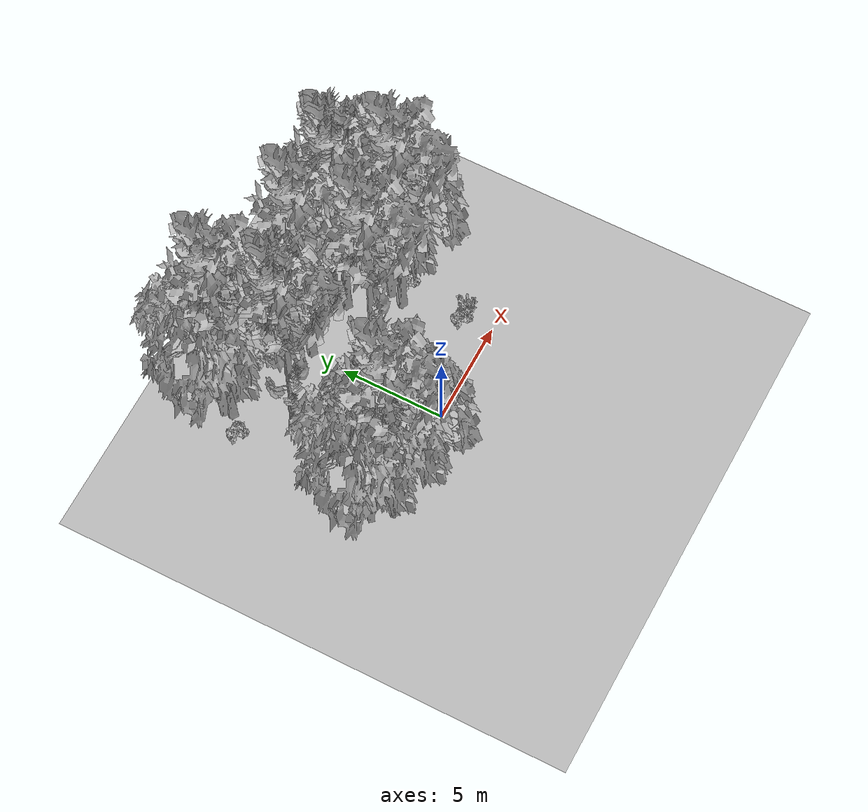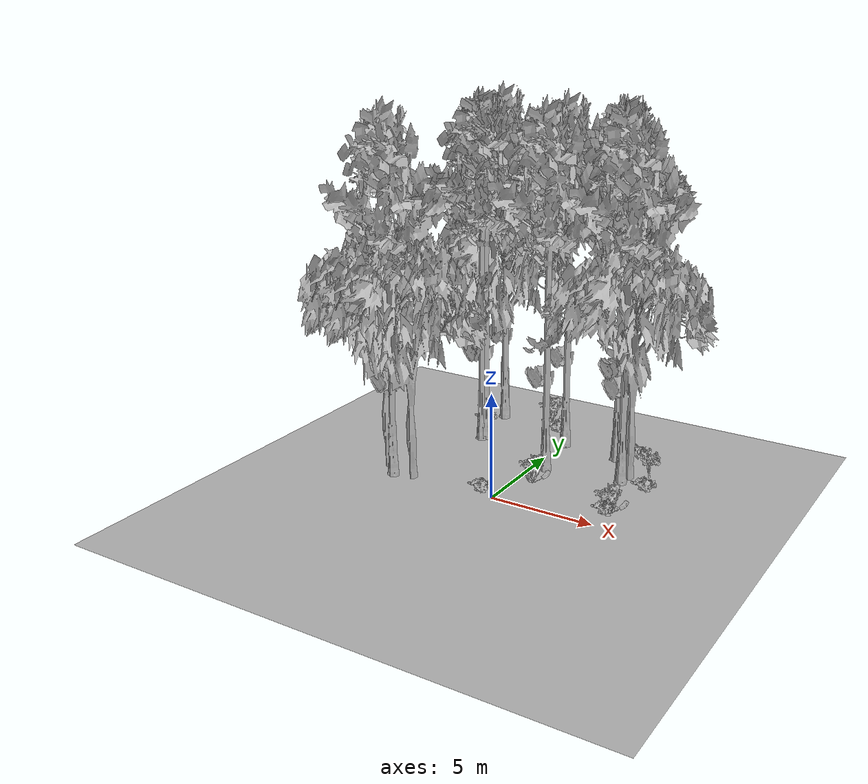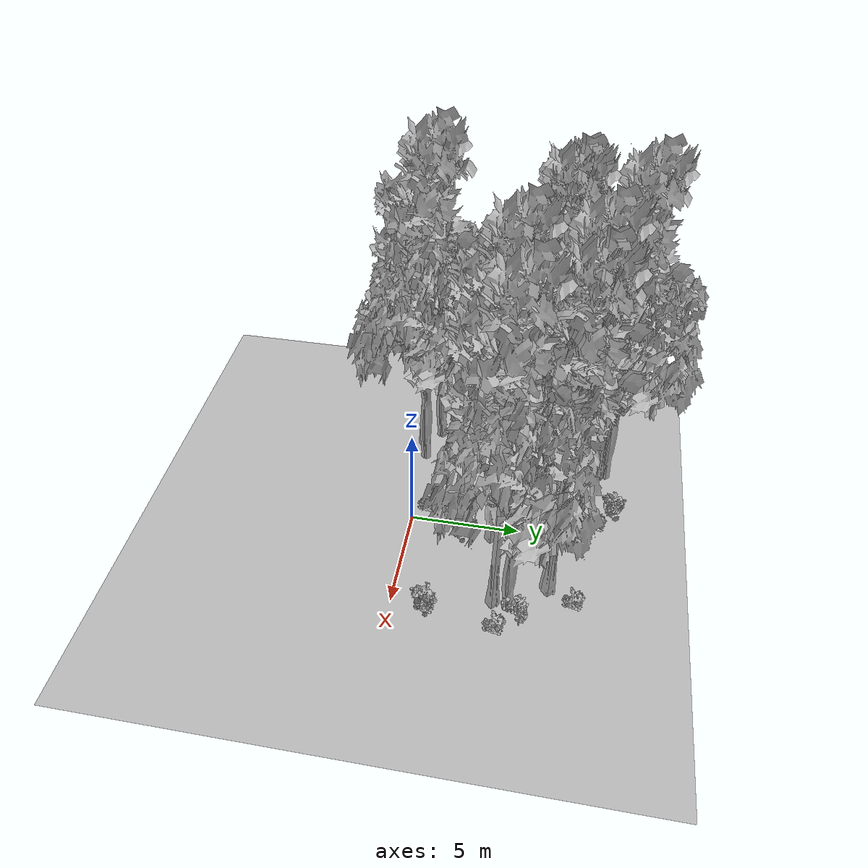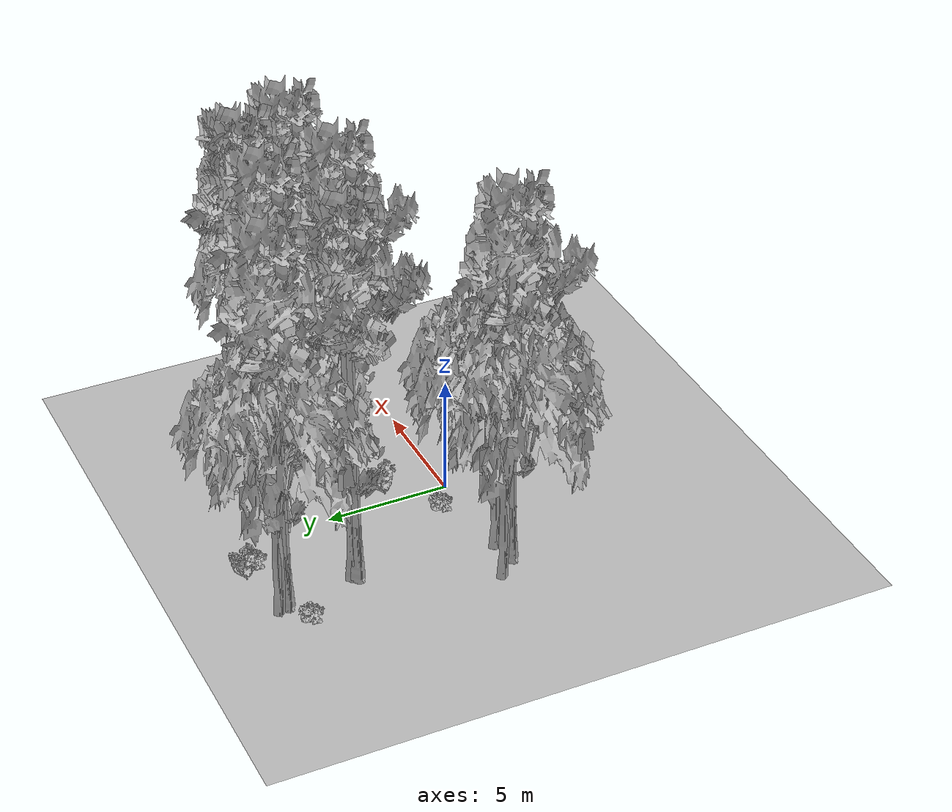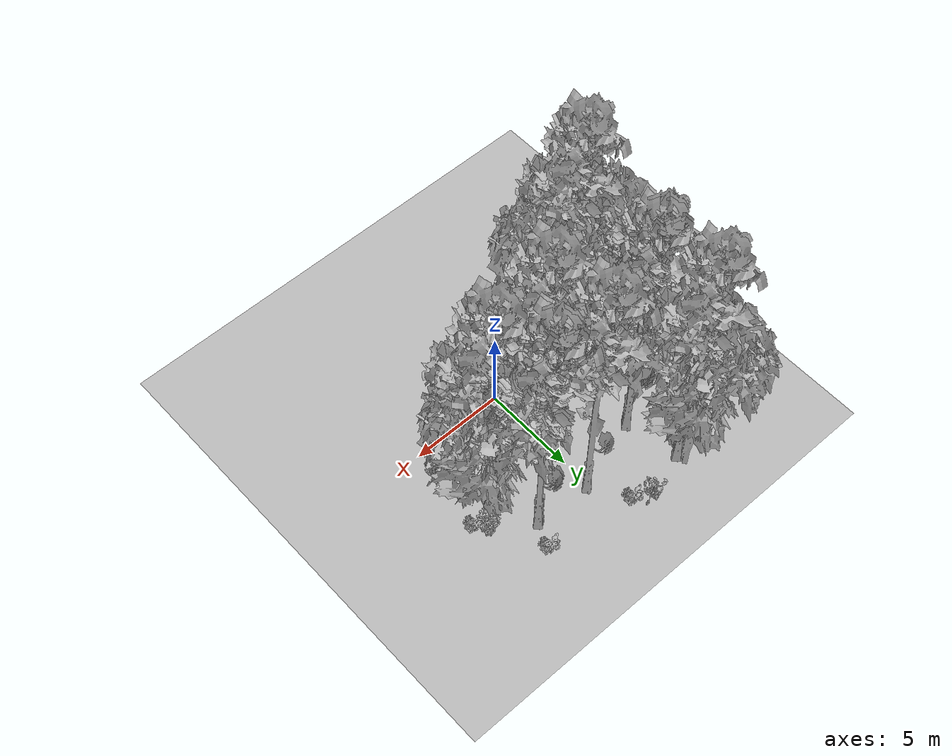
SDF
<sdf version="1.7">
 <world name="default">
  <model name="ground_plane">
   <static>1</static>
   <link name="link">
    <collision name="collision">
     <pose>-50 0 0 0 -0 0</pose>
     <geometry><plane><normal>0 0 1</normal><size>80 80</size></plane></geometry>
     <surface><contact><ode><min_depth>0.01</min_depth><max_vel>0</max_vel></ode></contact></surface>
    </collision>
    <visual name="grass">
     <cast_shadows>0</cast_shadows>
     <geometry>
      <mesh>
       <scale>0.46714285714285714 0.46714285714285714 0.1</scale>
       <uri>file://grass_plane/meshes/grass_plane.dae</uri>
      </mesh>
     </geometry>
    </visual>
   </link>
  </model>
  <model name="Tree 28">
   <static>1</static>
   <pose>-4.318430323322623 -0.1161629892853 0 1.57079 -0 0</pose>
   <link name="link">
    <collision name="collision">
     <geometry><mesh><scale>3.5 5 3.5</scale><uri>model://tree_2/meshes/tree_2.obj</uri></mesh></geometry>
    </collision>
    <visual name="visual">
     <geometry><mesh><scale>3.5 5 3.5</scale><uri>model://tree_2/meshes/tree_2.obj</uri></mesh></geometry>
    </visual>
   </link>
  </model>
  <model name="Tree 49">
   <static>1</static>
   <pose>-5.182883097933043 -0.32822462516662654 0 1.57079 -0 0</pose>
   <link name="link">
    <collision name="collision">
     <geometry><mesh><scale>3.5 5 3.5</scale><uri>model://tree_9/meshes/tree_9.obj</uri></mesh></geometry>
    </collision>
    <visual name="visual">
     <geometry><mesh><scale>3.5 5 3.5</scale><uri>model://tree_9/meshes/tree_9.obj</uri></mesh></geometry>
    </visual>
   </link>
  </model>
  <model name="Tree 66">
   <static>1</static>
   <pose>0.6810313529697041 3.8299848045472515 0 1.57079 -0 0</pose>
   <link name="link">
    <collision name="collision">
     <geometry><mesh><scale>3.5 5 3.5</scale><uri>model://tree_9/meshes/tree_9.obj</uri></mesh></geometry>
    </collision>
    <visual name="visual">
     <geometry><mesh><scale>3.5 5 3.5</scale><uri>model://tree_9/meshes/tree_9.obj</uri></mesh></geometry>
    </visual>
   </link>
  </model>
  <model name="Tree 110">
   <static>1</static>
   <pose>-4.2507201539104855 8.441320905821321 0 1.57079 -0 0</pose>
   <link name="link">
    <collision name="collision">
     <geometry><mesh><scale>3.5 5 3.5</scale><uri>model://tree_9/meshes/tree_9.obj</uri></mesh></geometry>
    </collision>
    <visual name="visual">
     <geometry><mesh><scale>3.5 5 3.5</scale><uri>model://tree_9/meshes/tree_9.obj</uri></mesh></geometry>
    </visual>
   </link>
  </model>
  <model name="Tree 122">
   <static>1</static>
   <pose>-4.510435952229443 8.80580828395069 0 1.57079 -0 0</pose>
   <link name="link">
    <collision name="collision">
     <geometry><mesh><scale>3.5 5 3.5</scale><uri>model://tree_2/meshes/tree_2.obj</uri></mesh></geometry>
    </collision>
    <visual name="visual">
     <geometry><mesh><scale>3.5 5 3.5</scale><uri>model://tree_2/meshes/tree_2.obj</uri></mesh></geometry>
    </visual>
   </link>
  </model>
  <model name="Tree 230">
   <static>1</static>
   <pose>0.20750306685467734 6.79404312009752 0 1.57079 -0 0</pose>
   <link name="link">
    <collision name="collision">
     <geometry><mesh><scale>3.5 5 3.5</scale><uri>model://tree_9/meshes/tree_9.obj</uri></mesh></geometry>
    </collision>
    <visual name="visual">
     <geometry><mesh><scale>3.5 5 3.5</scale><uri>model://tree_9/meshes/tree_9.obj</uri></mesh></geometry>
    </visual>
   </link>
  </model>
  <model name="Tree 299">
   <static>1</static>
   <pose>-3.676956762026414 5.559333901532909 0 1.57079 -0 0</pose>
   <link name="link">
    <collision name="collision">
     <geometry><mesh><scale>3.5 5 3.5</scale><uri>model://tree_9/meshes/tree_9.obj</uri></mesh></geometry>
    </collision>
    <visual name="visual">
     <geometry><mesh><scale>3.5 5 3.5</scale><uri>model://tree_9/meshes/tree_9.obj</uri></mesh></geometry>
    </visual>
   </link>
  </model>
  <model name="Tree 332">
   <static>1</static>
   <pose>4.420492277549656 4.967079046440915 0 1.57079 -0 0</pose>
   <link name="link">
    <collision name="collision">
     <geometry><mesh><scale>3.5 5 3.5</scale><uri>model://tree_2/meshes/tree_2.obj</uri></mesh></geometry>
    </collision>
    <visual name="visual">
     <geometry><mesh><scale>3.5 5 3.5</scale><uri>model://tree_2/meshes/tree_2.obj</uri></mesh></geometry>
    </visual>
   </link>
  </model>
  <model name="Tree 343">
   <static>1</static>
   <pose>-6.086001793075162 0.40546289231185995 0 1.57079 -0 0</pose>
   <link name="link">
    <collision name="collision">
     <geometry><mesh><scale>3.5 5 3.5</scale><uri>model://tree_2/meshes/tree_2.obj</uri></mesh></geometry>
    </collision>
    <visual name="visual">
     <geometry><mesh><scale>3.5 5 3.5</scale><uri>model://tree_2/meshes/tree_2.obj</uri></mesh></geometry>
    </visual>
   </link>
  </model>
  <model name="Tree 359">
   <static>1</static>
   <pose>4.363991219638059 4.336899244300469 0 1.57079 -0 0</pose>
   <link name="link">
    <collision name="collision">
     <geometry><mesh><scale>3.5 5 3.5</scale><uri>model://tree_9/meshes/tree_9.obj</uri></mesh></geometry>
    </collision>
    <visual name="visual">
     <geometry><mesh><scale>3.5 5 3.5</scale><uri>model://tree_9/meshes/tree_9.obj</uri></mesh></geometry>
    </visual>
   </link>
  </model>
  <model name="Tree 369">
   <static>1</static>
   <pose>3.1046724316712826 6.549945817037532 0 1.57079 -0 0</pose>
   <link name="link">
    <collision name="collision">
     <geometry><mesh><scale>3.5 5 3.5</scale><uri>model://tree_9/meshes/tree_9.obj</uri></mesh></geometry>
    </collision>
    <visual name="visual">
     <geometry><mesh><scale>3.5 5 3.5</scale><uri>model://tree_9/meshes/tree_9.obj</uri></mesh></geometry>
    </visual>
   </link>
  </model>
  <model name="Tree 402">
   <static>1</static>
   <pose>3.2664971606028033 6.647022338016733 0 1.57079 -0 0</pose>
   <link name="link">
    <collision name="collision">
     <geometry><mesh><scale>3.5 5 3.5</scale><uri>model://tree_9/meshes/tree_9.obj</uri></mesh></geometry>
    </collision>
    <visual name="visual">
     <geometry><mesh><scale>3.5 5 3.5</scale><uri>model://tree_9/meshes/tree_9.obj</uri></mesh></geometry>
    </visual>
   </link>
  </model>
  <model name="Tree 409">
   <static>1</static>
   <pose>-3.8247989211040263 5.416104082467086 0 1.57079 -0 0</pose>
   <link name="link">
    <collision name="collision">
     <geometry><mesh><scale>3.5 5 3.5</scale><uri>model://tree_9/meshes/tree_9.obj</uri></mesh></geometry>
    </collision>
    <visual name="visual">
     <geometry><mesh><scale>3.5 5 3.5</scale><uri>model://tree_9/meshes/tree_9.obj</uri></mesh></geometry>
    </visual>
   </link>
  </model>
  <model name="Bush 2">
   <static>1</static>
   <pose>5.4516089853116725 4.552186415486929 0 1.57079 -0 0</pose>
   <link name="link">
    <collision name="collision">
     <geometry><mesh><scale>2 2 2</scale><uri>model://bush_2/meshes/bush_2.obj</uri></mesh></geometry>
     <surface><contact><collide_without_contact>false</collide_without_contact></contact></surface>
    </collision>
    <visual name="visual">
     <geometry><mesh><scale>2 2 2</scale><uri>model://bush_2/meshes/bush_2.obj</uri></mesh></geometry>
    </visual>
   </link>
  </model>
  <model name="Bush 19">
   <static>1</static>
   <pose>-5.022900858947118 7.7843610752612165 0 1.57079 -0 0</pose>
   <link name="link">
    <collision name="collision">
     <geometry><mesh><scale>2 2 2</scale><uri>model://bush_2/meshes/bush_2.obj</uri></mesh></geometry>
     <surface><contact><collide_without_contact>false</collide_without_contact></contact></surface>
    </collision>
    <visual name="visual">
     <geometry><mesh><scale>2 2 2</scale><uri>model://bush_2/meshes/bush_2.obj</uri></mesh></geometry>
    </visual>
   </link>
  </model>
  <model name="Bush 135">
   <static>1</static>
   <pose>-0.944319001160693 0.619796168320697 0 1.57079 -0 0</pose>
   <link name="link">
    <collision name="collision">
     <geometry><mesh><scale>2 2 2</scale><uri>model://bush_2/meshes/bush_2.obj</uri></mesh></geometry>
     <surface><contact><collide_without_contact>false</collide_without_contact></contact></surface>
    </collision>
    <visual name="visual">
     <geometry><mesh><scale>2 2 2</scale><uri>model://bush_2/meshes/bush_2.obj</uri></mesh></geometry>
    </visual>
   </link>
  </model>
  <model name="Bush 165">
   <static>1</static>
   <pose>3.577124376536389 7.774666348452691 0 1.57079 -0 0</pose>
   <link name="link">
    <collision name="collision">
     <geometry><mesh><scale>2 2 2</scale><uri>model://bush_2/meshes/bush_2.obj</uri></mesh></geometry>
     <surface><contact><collide_without_contact>false</collide_without_contact></contact></surface>
    </collision>
    <visual name="visual">
     <geometry><mesh><scale>2 2 2</scale><uri>model://bush_2/meshes/bush_2.obj</uri></mesh></geometry>
    </visual>
   </link>
  </model>
  <model name="Bush 182">
   <static>1</static>
   <pose>-1.1877091519175664 8.542320714025493 0 1.57079 -0 0</pose>
   <link name="link">
    <collision name="collision">
     <geometry><mesh><scale>2 2 2</scale><uri>model://bush_2/meshes/bush_2.obj</uri></mesh></geometry>
     <surface><contact><collide_without_contact>false</collide_without_contact></contact></surface>
    </collision>
    <visual name="visual">
     <geometry><mesh><scale>2 2 2</scale><uri>model://bush_2/meshes/bush_2.obj</uri></mesh></geometry>
    </visual>
   </link>
  </model>
  <model name="Bush 265">
   <static>1</static>
   <pose>-1.8785088274832802 9.16064724408593 0 1.57079 -0 0</pose>
   <link name="link">
    <collision name="collision">
     <geometry><mesh><scale>2 2 2</scale><uri>model://bush_4/meshes/bush_4.obj</uri></mesh></geometry>
     <surface><contact><collide_without_contact>false</collide_without_contact></contact></surface>
    </collision>
    <visual name="visual">
     <geometry><mesh><scale>2 2 2</scale><uri>model://bush_4/meshes/bush_4.obj</uri></mesh></geometry>
    </visual>
   </link>
  </model>
  <model name="Bush 590">
   <static>1</static>
   <pose>5.281275394659765 5.558927173381683 0 1.57079 -0 0</pose>
   <link name="link">
    <collision name="collision">
     <geometry><mesh><scale>2 2 2</scale><uri>model://bush_5/meshes/bush_5.obj</uri></mesh></geometry>
     <surface><contact><collide_without_contact>false</collide_without_contact></contact></surface>
    </collision>
    <visual name="visual">
     <geometry><mesh><scale>2 2 2</scale><uri>model://bush_5/meshes/bush_5.obj</uri></mesh></geometry>
    </visual>
   </link>
  </model>
  <model name="Bush 610">
   <static>1</static>
   <pose>0.7792608726649064 2.3253819915676317 0 1.57079 -0 0</pose>
   <link name="link">
    <collision name="collision">
     <geometry><mesh><scale>2 2 2</scale><uri>model://bush_4/meshes/bush_4.obj</uri></mesh></geometry>
     <surface><contact><collide_without_contact>false</collide_without_contact></contact></surface>
    </collision>
    <visual name="visual">
     <geometry><mesh><scale>2 2 2</scale><uri>model://bush_4/meshes/bush_4.obj</uri></mesh></geometry>
    </visual>
   </link>
  </model>
  <model name="Bush 613">
   <static>1</static>
   <pose>4.900142680404471 1.5139135414321316 0 1.57079 -0 0</pose>
   <link name="link">
    <collision name="collision">
     <geometry><mesh><scale>2 2 2</scale><uri>model://bush_2/meshes/bush_2.obj</uri></mesh></geometry>
     <surface><contact><collide_without_contact>false</collide_without_contact></contact></surface>
    </collision>
    <visual name="visual">
     <geometry><mesh><scale>2 2 2</scale><uri>model://bush_2/meshes/bush_2.obj</uri></mesh></geometry>
    </visual>
   </link>
  </model>
  <model name="Bush 623">
   <static>1</static>
   <pose>5.153265090480751 1.3850822799419262 0 1.57079 -0 0</pose>
   <link name="link">
    <collision name="collision">
     <geometry><mesh><scale>2 2 2</scale><uri>model://bush_4/meshes/bush_4.obj</uri></mesh></geometry>
     <surface><contact><collide_without_contact>false</collide_without_contact></contact></surface>
    </collision>
    <visual name="visual">
     <geometry><mesh><scale>2 2 2</scale><uri>model://bush_4/meshes/bush_4.obj</uri></mesh></geometry>
    </visual>
   </link>
  </model>
 </world>
</sdf>
